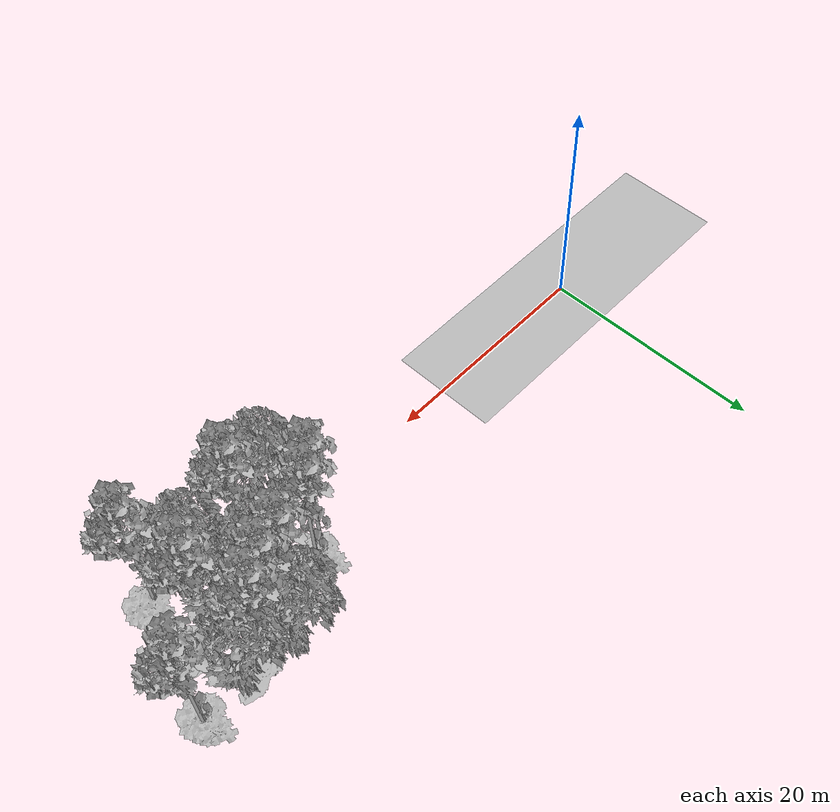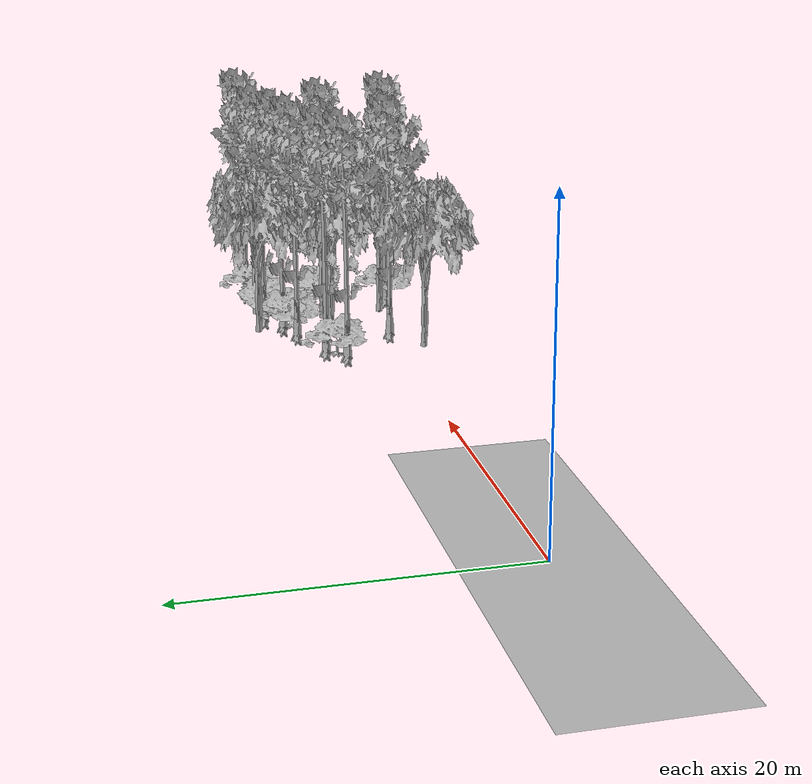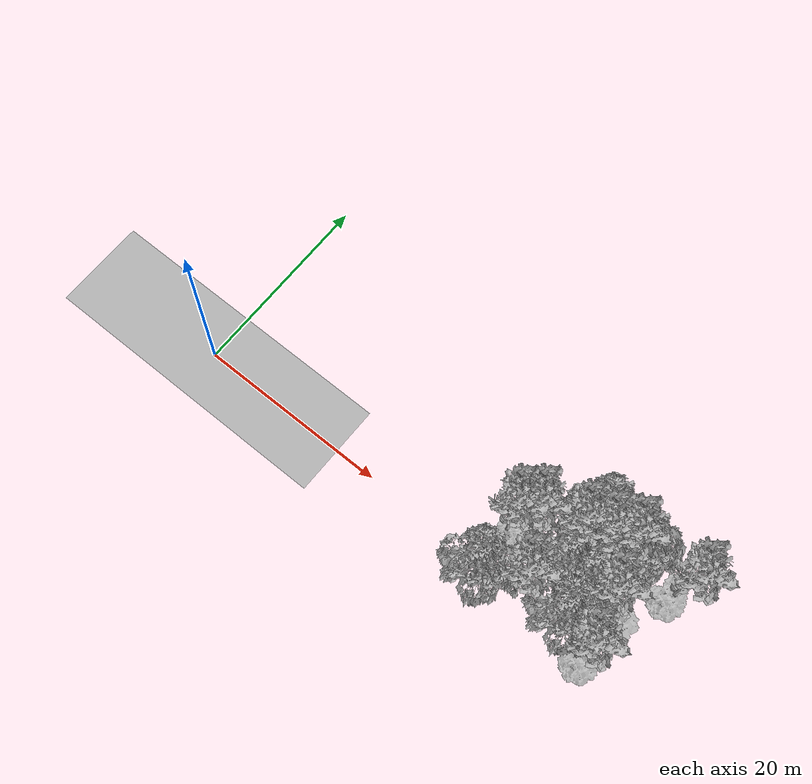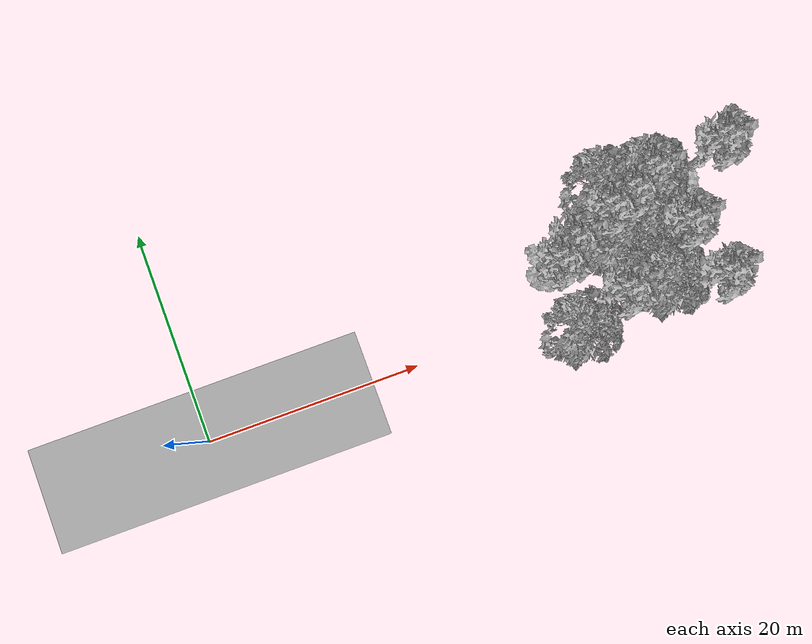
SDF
<sdf version="1.7">
 <world name="default">
  <model name="ground_plane">
   <static>1</static>
   <link name="link">
    <collision name="collision">
     <pose>-50 0 0 0 -0 0</pose>
     <geometry><plane><normal>0 0 1</normal><size>100 100</size></plane></geometry>
     <surface><contact><ode><min_depth>0.01</min_depth><max_vel>0</max_vel></ode></contact></surface>
    </collision>
    <visual name="grass">
     <cast_shadows>0</cast_shadows>
     <geometry>
      <mesh>
       <scale>0.5814285714285714 0.18142857142857144 0.1</scale>
       <uri>file://grass_plane/meshes/grass_plane.dae</uri>
      </mesh>
     </geometry>
    </visual>
   </link>
  </model>
  <model name="Tree 70">
   <static>1</static>
   <pose>38.23805509128185 6.188215829867463 0 1.57079 -0 0</pose>
   <link name="link">
    <collision name="collision">
     <geometry><mesh><scale>3.5 5 3.5</scale><uri>model://tree_9/meshes/tree_9.obj</uri></mesh></geometry>
    </collision>
    <visual name="visual">
     <geometry><mesh><scale>3.5 5 3.5</scale><uri>model://tree_9/meshes/tree_9.obj</uri></mesh></geometry>
    </visual>
   </link>
  </model>
  <model name="Tree 87">
   <static>1</static>
   <pose>42.23224488766985 7.88477463384411 0 1.57079 -0 0</pose>
   <link name="link">
    <collision name="collision">
     <geometry><mesh><scale>3.5 5 3.5</scale><uri>model://tree_9/meshes/tree_9.obj</uri></mesh></geometry>
    </collision>
    <visual name="visual">
     <geometry><mesh><scale>3.5 5 3.5</scale><uri>model://tree_9/meshes/tree_9.obj</uri></mesh></geometry>
    </visual>
   </link>
  </model>
  <model name="Tree 89">
   <static>1</static>
   <pose>33.63632901150163 -1.9607990020211865 0 1.57079 -0 0</pose>
   <link name="link">
    <collision name="collision">
     <geometry><mesh><scale>3.5 5 3.5</scale><uri>model://tree_2/meshes/tree_2.obj</uri></mesh></geometry>
    </collision>
    <visual name="visual">
     <geometry><mesh><scale>3.5 5 3.5</scale><uri>model://tree_2/meshes/tree_2.obj</uri></mesh></geometry>
    </visual>
   </link>
  </model>
  <model name="Tree 92">
   <static>1</static>
   <pose>41.84798739059791 -0.6412553137173163 0 1.57079 -0 0</pose>
   <link name="link">
    <collision name="collision">
     <geometry><mesh><scale>3.5 5 3.5</scale><uri>model://tree_2/meshes/tree_2.obj</uri></mesh></geometry>
    </collision>
    <visual name="visual">
     <geometry><mesh><scale>3.5 5 3.5</scale><uri>model://tree_2/meshes/tree_2.obj</uri></mesh></geometry>
    </visual>
   </link>
  </model>
  <model name="Tree 132">
   <static>1</static>
   <pose>43.62468618749092 3.0969853693722804 0 1.57079 -0 0</pose>
   <link name="link">
    <collision name="collision">
     <geometry><mesh><scale>3.5 5 3.5</scale><uri>model://tree_9/meshes/tree_9.obj</uri></mesh></geometry>
    </collision>
    <visual name="visual">
     <geometry><mesh><scale>3.5 5 3.5</scale><uri>model://tree_9/meshes/tree_9.obj</uri></mesh></geometry>
    </visual>
   </link>
  </model>
  <model name="Tree 143">
   <static>1</static>
   <pose>39.191717706999725 3.524854479504903 0 1.57079 -0 0</pose>
   <link name="link">
    <collision name="collision">
     <geometry><mesh><scale>3.5 5 3.5</scale><uri>model://tree_2/meshes/tree_2.obj</uri></mesh></geometry>
    </collision>
    <visual name="visual">
     <geometry><mesh><scale>3.5 5 3.5</scale><uri>model://tree_2/meshes/tree_2.obj</uri></mesh></geometry>
    </visual>
   </link>
  </model>
  <model name="Tree 196">
   <static>1</static>
   <pose>48.06793905554457 7.829732831829254 0 1.57079 -0 0</pose>
   <link name="link">
    <collision name="collision">
     <geometry><mesh><scale>4 2.5 4</scale><uri>model://tree_1/meshes/tree_1.obj</uri></mesh></geometry>
    </collision>
    <visual name="visual">
     <geometry><mesh><scale>4 2.5 4</scale><uri>model://tree_1/meshes/tree_1.obj</uri></mesh></geometry>
    </visual>
   </link>
  </model>
  <model name="Tree 205">
   <static>1</static>
   <pose>33.087046636948685 3.641257949984272 0 1.57079 -0 0</pose>
   <link name="link">
    <collision name="collision">
     <geometry><mesh><scale>3.5 5 3.5</scale><uri>model://tree_9/meshes/tree_9.obj</uri></mesh></geometry>
    </collision>
    <visual name="visual">
     <geometry><mesh><scale>3.5 5 3.5</scale><uri>model://tree_9/meshes/tree_9.obj</uri></mesh></geometry>
    </visual>
   </link>
  </model>
  <model name="Tree 217">
   <static>1</static>
   <pose>45.66307629517674 2.851739600622288 0 1.57079 -0 0</pose>
   <link name="link">
    <collision name="collision">
     <geometry><mesh><scale>3 2 3</scale><uri>model://tree_3/meshes/tree_3.obj</uri></mesh></geometry>
    </collision>
    <visual name="visual">
     <geometry><mesh><scale>3 2 3</scale><uri>model://tree_3/meshes/tree_3.obj</uri></mesh></geometry>
    </visual>
   </link>
  </model>
  <model name="Tree 218">
   <static>1</static>
   <pose>40.30233905163196 6.836749876820019 0 1.57079 -0 0</pose>
   <link name="link">
    <collision name="collision">
     <geometry><mesh><scale>3.5 5 3.5</scale><uri>model://tree_9/meshes/tree_9.obj</uri></mesh></geometry>
    </collision>
    <visual name="visual">
     <geometry><mesh><scale>3.5 5 3.5</scale><uri>model://tree_9/meshes/tree_9.obj</uri></mesh></geometry>
    </visual>
   </link>
  </model>
  <model name="Tree 267">
   <static>1</static>
   <pose>44.83405051702911 -1.7334179443265967 0 1.57079 -0 0</pose>
   <link name="link">
    <collision name="collision">
     <geometry><mesh><scale>3.5 5 3.5</scale><uri>model://tree_9/meshes/tree_9.obj</uri></mesh></geometry>
    </collision>
    <visual name="visual">
     <geometry><mesh><scale>3.5 5 3.5</scale><uri>model://tree_9/meshes/tree_9.obj</uri></mesh></geometry>
    </visual>
   </link>
  </model>
  <model name="Tree 303">
   <static>1</static>
   <pose>48.442475802249376 8.227474942309176 0 1.57079 -0 0</pose>
   <link name="link">
    <collision name="collision">
     <geometry><mesh><scale>3.5 5 3.5</scale><uri>model://tree_9/meshes/tree_9.obj</uri></mesh></geometry>
    </collision>
    <visual name="visual">
     <geometry><mesh><scale>3.5 5 3.5</scale><uri>model://tree_9/meshes/tree_9.obj</uri></mesh></geometry>
    </visual>
   </link>
  </model>
  <model name="Tree 322">
   <static>1</static>
   <pose>45.300898232385606 -1.7265617117116108 0 1.57079 -0 0</pose>
   <link name="link">
    <collision name="collision">
     <geometry><mesh><scale>4 2.5 4</scale><uri>model://tree_1/meshes/tree_1.obj</uri></mesh></geometry>
    </collision>
    <visual name="visual">
     <geometry><mesh><scale>4 2.5 4</scale><uri>model://tree_1/meshes/tree_1.obj</uri></mesh></geometry>
    </visual>
   </link>
  </model>
  <model name="Tree 335">
   <static>1</static>
   <pose>40.219159552660315 6.1699889608258545 0 1.57079 -0 0</pose>
   <link name="link">
    <collision name="collision">
     <geometry><mesh><scale>4 2.5 4</scale><uri>model://tree_1/meshes/tree_1.obj</uri></mesh></geometry>
    </collision>
    <visual name="visual">
     <geometry><mesh><scale>4 2.5 4</scale><uri>model://tree_1/meshes/tree_1.obj</uri></mesh></geometry>
    </visual>
   </link>
  </model>
  <model name="Tree 372">
   <static>1</static>
   <pose>33.65212230729212 4.262551511198069 0 1.57079 -0 0</pose>
   <link name="link">
    <collision name="collision">
     <geometry><mesh><scale>4 2.5 4</scale><uri>model://tree_1/meshes/tree_1.obj</uri></mesh></geometry>
    </collision>
    <visual name="visual">
     <geometry><mesh><scale>4 2.5 4</scale><uri>model://tree_1/meshes/tree_1.obj</uri></mesh></geometry>
    </visual>
   </link>
  </model>
  <model name="Tree 382">
   <static>1</static>
   <pose>44.928215963491326 3.1091522524081476 0 1.57079 -0 0</pose>
   <link name="link">
    <collision name="collision">
     <geometry><mesh><scale>3 2 3</scale><uri>model://tree_3/meshes/tree_3.obj</uri></mesh></geometry>
    </collision>
    <visual name="visual">
     <geometry><mesh><scale>3 2 3</scale><uri>model://tree_3/meshes/tree_3.obj</uri></mesh></geometry>
    </visual>
   </link>
  </model>
  <model name="Tree 386">
   <static>1</static>
   <pose>41.41054817974461 3.711298796736216 0 1.57079 -0 0</pose>
   <link name="link">
    <collision name="collision">
     <geometry><mesh><scale>3.5 5 3.5</scale><uri>model://tree_2/meshes/tree_2.obj</uri></mesh></geometry>
    </collision>
    <visual name="visual">
     <geometry><mesh><scale>3.5 5 3.5</scale><uri>model://tree_2/meshes/tree_2.obj</uri></mesh></geometry>
    </visual>
   </link>
  </model>
  <model name="Tree 389">
   <static>1</static>
   <pose>43.42413978253202 7.440539669668436 0 1.57079 -0 0</pose>
   <link name="link">
    <collision name="collision">
     <geometry><mesh><scale>3 2 3</scale><uri>model://tree_3/meshes/tree_3.obj</uri></mesh></geometry>
    </collision>
    <visual name="visual">
     <geometry><mesh><scale>3 2 3</scale><uri>model://tree_3/meshes/tree_3.obj</uri></mesh></geometry>
    </visual>
   </link>
  </model>
  <model name="Tree 410">
   <static>1</static>
   <pose>34.52418330156911 4.841617978322031 0 1.57079 -0 0</pose>
   <link name="link">
    <collision name="collision">
     <geometry><mesh><scale>3.5 5 3.5</scale><uri>model://tree_9/meshes/tree_9.obj</uri></mesh></geometry>
    </collision>
    <visual name="visual">
     <geometry><mesh><scale>3.5 5 3.5</scale><uri>model://tree_9/meshes/tree_9.obj</uri></mesh></geometry>
    </visual>
   </link>
  </model>
  <model name="Tree 447">
   <static>1</static>
   <pose>37.14286371585608 -0.2824927895923519 0 1.57079 -0 0</pose>
   <link name="link">
    <collision name="collision">
     <geometry><mesh><scale>3.5 5 3.5</scale><uri>model://tree_9/meshes/tree_9.obj</uri></mesh></geometry>
    </collision>
    <visual name="visual">
     <geometry><mesh><scale>3.5 5 3.5</scale><uri>model://tree_9/meshes/tree_9.obj</uri></mesh></geometry>
    </visual>
   </link>
  </model>
  <model name="Tree 459">
   <static>1</static>
   <pose>40.40694781995629 6.247037481634173 0 1.57079 -0 0</pose>
   <link name="link">
    <collision name="collision">
     <geometry><mesh><scale>3 2 3</scale><uri>model://tree_3/meshes/tree_3.obj</uri></mesh></geometry>
    </collision>
    <visual name="visual">
     <geometry><mesh><scale>3 2 3</scale><uri>model://tree_3/meshes/tree_3.obj</uri></mesh></geometry>
    </visual>
   </link>
  </model>
  <model name="Tree 484">
   <static>1</static>
   <pose>43.46120341457494 8.26053557103409 0 1.57079 -0 0</pose>
   <link name="link">
    <collision name="collision">
     <geometry><mesh><scale>3.5 5 3.5</scale><uri>model://tree_2/meshes/tree_2.obj</uri></mesh></geometry>
    </collision>
    <visual name="visual">
     <geometry><mesh><scale>3.5 5 3.5</scale><uri>model://tree_2/meshes/tree_2.obj</uri></mesh></geometry>
    </visual>
   </link>
  </model>
  <model name="Tree 533">
   <static>1</static>
   <pose>39.43929508333406 8.69686116533249 0 1.57079 -0 0</pose>
   <link name="link">
    <collision name="collision">
     <geometry><mesh><scale>3.5 5 3.5</scale><uri>model://tree_2/meshes/tree_2.obj</uri></mesh></geometry>
    </collision>
    <visual name="visual">
     <geometry><mesh><scale>3.5 5 3.5</scale><uri>model://tree_2/meshes/tree_2.obj</uri></mesh></geometry>
    </visual>
   </link>
  </model>
 </world>
</sdf>
